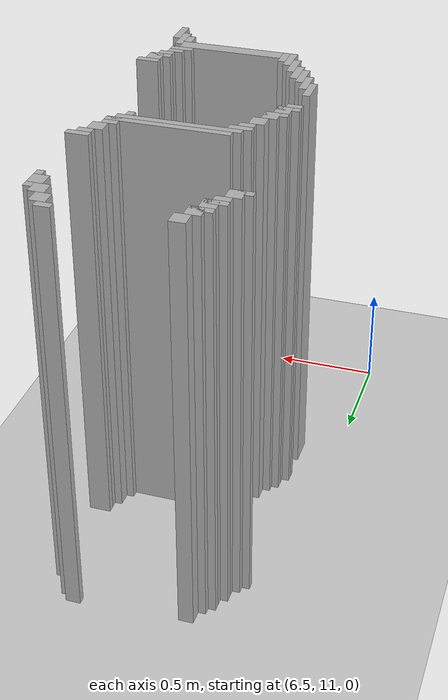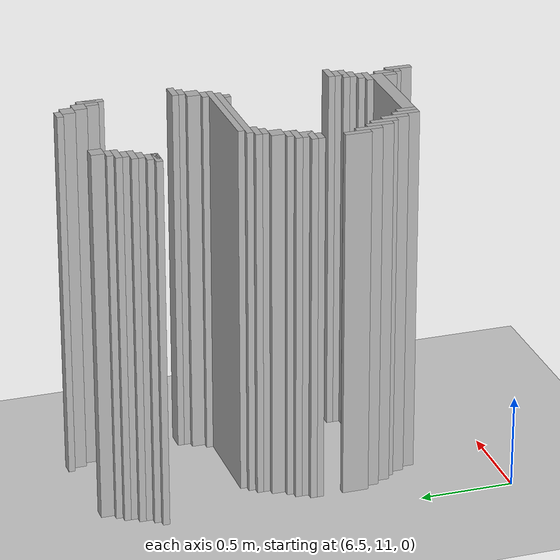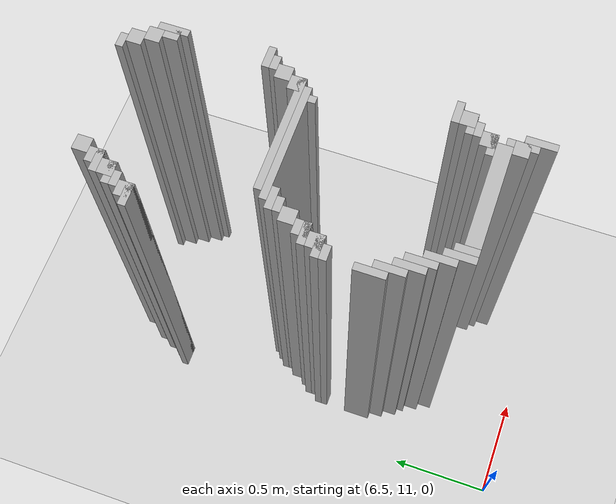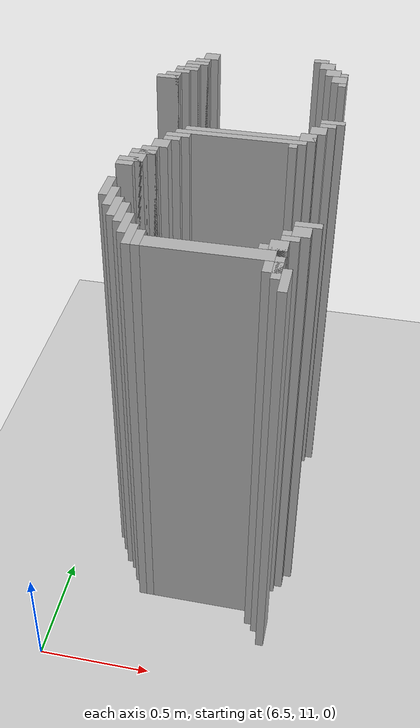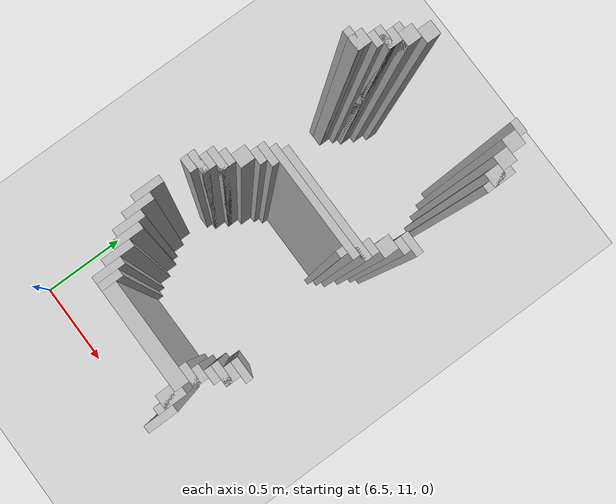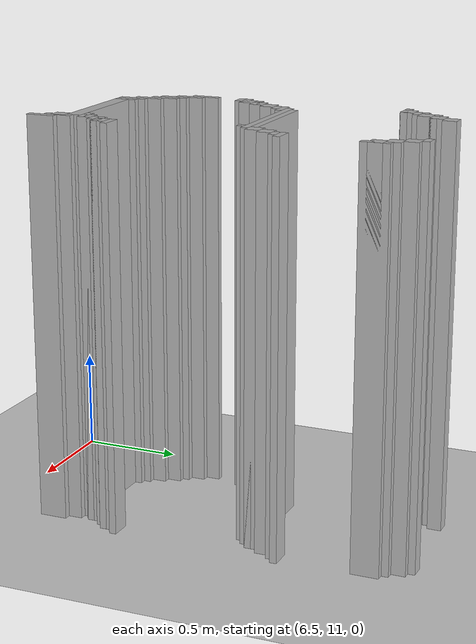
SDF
<sdf version="1.6">
 <world name="slam_world">
  <model name="ground_plane">
   <static>true</static>
   <link name="link">
    <collision name="collision">
     <geometry><plane><normal>0 0 1</normal><size>100 100</size></plane></geometry>
    </collision>
    <visual name="visual">
     <geometry><plane><normal>0 0 1</normal><size>100 100</size></plane></geometry>
     <material>
      <ambient>0.8 0.8 0.8 1</ambient>
      <diffuse>0.8 0.8 0.8 1</diffuse>
      <specular>0.8 0.8 0.8 1</specular>
     </material>
    </visual>
   </link>
  </model>
  <model name="wall_1422">
   <static>true</static>
   <pose>7.378190255220417 13.138051044083527 1.0 0 0 0</pose>
   <link name="link">
    <collision name="collision">
     <geometry><box><size>0.06960556844547564 0.03480278422273782 2.0</size></box></geometry>
    </collision>
    <visual name="visual">
     <geometry><box><size>0.06960556844547564 0.03480278422273782 2.0</size></box></geometry>
     <material><ambient>0.5 0.5 0.5 1</ambient><diffuse>0.7 0.7 0.7 1</diffuse></material>
    </visual>
   </link>
  </model>
  <model name="wall_1432">
   <static>true</static>
   <pose>6.85614849187935 13.085846867749419 1.0 0 0 0</pose>
   <link name="link">
    <collision name="collision">
     <geometry><box><size>0.06960556844547564 0.06960556844547564 2.0</size></box></geometry>
    </collision>
    <visual name="visual">
     <geometry><box><size>0.06960556844547564 0.06960556844547564 2.0</size></box></geometry>
     <material><ambient>0.5 0.5 0.5 1</ambient><diffuse>0.7 0.7 0.7 1</diffuse></material>
    </visual>
   </link>
  </model>
  <model name="wall_1433">
   <static>true</static>
   <pose>7.412993039443156 13.085846867749419 1.0 0 0 0</pose>
   <link name="link">
    <collision name="collision">
     <geometry><box><size>0.06960556844547564 0.06960556844547564 2.0</size></box></geometry>
    </collision>
    <visual name="visual">
     <geometry><box><size>0.06960556844547564 0.06960556844547564 2.0</size></box></geometry>
     <material><ambient>0.5 0.5 0.5 1</ambient><diffuse>0.7 0.7 0.7 1</diffuse></material>
    </visual>
   </link>
  </model>
  <model name="wall_1454">
   <static>true</static>
   <pose>6.821345707656612 13.016241299303944 1.0 0 0 0</pose>
   <link name="link">
    <collision name="collision">
     <geometry><box><size>0.06960556844547564 0.06960556844547564 2.0</size></box></geometry>
    </collision>
    <visual name="visual">
     <geometry><box><size>0.06960556844547564 0.06960556844547564 2.0</size></box></geometry>
     <material><ambient>0.5 0.5 0.5 1</ambient><diffuse>0.7 0.7 0.7 1</diffuse></material>
    </visual>
   </link>
  </model>
  <model name="wall_1455">
   <static>true</static>
   <pose>7.447795823665893 13.016241299303944 1.0 0 0 0</pose>
   <link name="link">
    <collision name="collision">
     <geometry><box><size>0.06960556844547564 0.06960556844547564 2.0</size></box></geometry>
    </collision>
    <visual name="visual">
     <geometry><box><size>0.06960556844547564 0.06960556844547564 2.0</size></box></geometry>
     <material><ambient>0.5 0.5 0.5 1</ambient><diffuse>0.7 0.7 0.7 1</diffuse></material>
    </visual>
   </link>
  </model>
  <model name="wall_1470">
   <static>true</static>
   <pose>6.803944315545244 12.998839907192576 1.0 0 0 0</pose>
   <link name="link">
    <collision name="collision">
     <geometry><box><size>0.10440835266821345 0.03480278422273782 2.0</size></box></geometry>
    </collision>
    <visual name="visual">
     <geometry><box><size>0.10440835266821345 0.03480278422273782 2.0</size></box></geometry>
     <material><ambient>0.5 0.5 0.5 1</ambient><diffuse>0.7 0.7 0.7 1</diffuse></material>
    </visual>
   </link>
  </model>
  <model name="wall_1471">
   <static>true</static>
   <pose>7.5 12.946635730858468 1.0 0 0 0</pose>
   <link name="link">
    <collision name="collision">
     <geometry><box><size>0.03480278422273782 0.13921113689095127 2.0</size></box></geometry>
    </collision>
    <visual name="visual">
     <geometry><box><size>0.03480278422273782 0.13921113689095127 2.0</size></box></geometry>
     <material><ambient>0.5 0.5 0.5 1</ambient><diffuse>0.7 0.7 0.7 1</diffuse></material>
    </visual>
   </link>
  </model>
  <model name="wall_1486">
   <static>true</static>
   <pose>6.786542923433874 12.946635730858468 1.0 0 0 0</pose>
   <link name="link">
    <collision name="collision">
     <geometry><box><size>0.06960556844547564 0.06960556844547564 2.0</size></box></geometry>
    </collision>
    <visual name="visual">
     <geometry><box><size>0.06960556844547564 0.06960556844547564 2.0</size></box></geometry>
     <material><ambient>0.5 0.5 0.5 1</ambient><diffuse>0.7 0.7 0.7 1</diffuse></material>
    </visual>
   </link>
  </model>
  <model name="wall_1487">
   <static>true</static>
   <pose>7.48259860788863 12.946635730858468 1.0 0 0 0</pose>
   <link name="link">
    <collision name="collision">
     <geometry><box><size>0.06960556844547564 0.06960556844547564 2.0</size></box></geometry>
    </collision>
    <visual name="visual">
     <geometry><box><size>0.06960556844547564 0.06960556844547564 2.0</size></box></geometry>
     <material><ambient>0.5 0.5 0.5 1</ambient><diffuse>0.7 0.7 0.7 1</diffuse></material>
    </visual>
   </link>
  </model>
  <model name="wall_1502">
   <static>true</static>
   <pose>6.769141531322505 12.929234338747099 1.0 0 0 0</pose>
   <link name="link">
    <collision name="collision">
     <geometry><box><size>0.10440835266821345 0.03480278422273782 2.0</size></box></geometry>
    </collision>
    <visual name="visual">
     <geometry><box><size>0.10440835266821345 0.03480278422273782 2.0</size></box></geometry>
     <material><ambient>0.5 0.5 0.5 1</ambient><diffuse>0.7 0.7 0.7 1</diffuse></material>
    </visual>
   </link>
  </model>
  <model name="wall_1515">
   <static>true</static>
   <pose>6.751740139211137 12.894431554524362 1.0 0 0 0</pose>
   <link name="link">
    <collision name="collision">
     <geometry><box><size>0.06960556844547564 0.03480278422273782 2.0</size></box></geometry>
    </collision>
    <visual name="visual">
     <geometry><box><size>0.06960556844547564 0.03480278422273782 2.0</size></box></geometry>
     <material><ambient>0.5 0.5 0.5 1</ambient><diffuse>0.7 0.7 0.7 1</diffuse></material>
    </visual>
   </link>
  </model>
  <model name="wall_1527">
   <static>true</static>
   <pose>6.716937354988398 12.842227378190255 1.0 0 0 0</pose>
   <link name="link">
    <collision name="collision">
     <geometry><box><size>0.06960556844547564 0.06960556844547564 2.0</size></box></geometry>
    </collision>
    <visual name="visual">
     <geometry><box><size>0.06960556844547564 0.06960556844547564 2.0</size></box></geometry>
     <material><ambient>0.5 0.5 0.5 1</ambient><diffuse>0.7 0.7 0.7 1</diffuse></material>
    </visual>
   </link>
  </model>
  <model name="wall_1543">
   <static>true</static>
   <pose>6.69953596287703 12.824825986078885 1.0 0 0 0</pose>
   <link name="link">
    <collision name="collision">
     <geometry><box><size>0.10440835266821345 0.03480278422273782 2.0</size></box></geometry>
    </collision>
    <visual name="visual">
     <geometry><box><size>0.10440835266821345 0.03480278422273782 2.0</size></box></geometry>
     <material><ambient>0.5 0.5 0.5 1</ambient><diffuse>0.7 0.7 0.7 1</diffuse></material>
    </visual>
   </link>
  </model>
  <model name="wall_1652">
   <static>true</static>
   <pose>7.5 12.511600928074245 1.0 0 0 0</pose>
   <link name="link">
    <collision name="collision">
     <geometry><box><size>0.10440835266821345 0.03480278422273782 2.0</size></box></geometry>
    </collision>
    <visual name="visual">
     <geometry><box><size>0.10440835266821345 0.03480278422273782 2.0</size></box></geometry>
     <material><ambient>0.5 0.5 0.5 1</ambient><diffuse>0.7 0.7 0.7 1</diffuse></material>
    </visual>
   </link>
  </model>
  <model name="wall_1663">
   <static>true</static>
   <pose>7.48259860788863 12.476798143851507 1.0 0 0 0</pose>
   <link name="link">
    <collision name="collision">
     <geometry><box><size>0.06960556844547564 0.03480278422273782 2.0</size></box></geometry>
    </collision>
    <visual name="visual">
     <geometry><box><size>0.06960556844547564 0.03480278422273782 2.0</size></box></geometry>
     <material><ambient>0.5 0.5 0.5 1</ambient><diffuse>0.7 0.7 0.7 1</diffuse></material>
    </visual>
   </link>
  </model>
  <model name="wall_1673">
   <static>true</static>
   <pose>7.447795823665893 12.424593967517401 1.0 0 0 0</pose>
   <link name="link">
    <collision name="collision">
     <geometry><box><size>0.06960556844547564 0.06960556844547564 2.0</size></box></geometry>
    </collision>
    <visual name="visual">
     <geometry><box><size>0.06960556844547564 0.06960556844547564 2.0</size></box></geometry>
     <material><ambient>0.5 0.5 0.5 1</ambient><diffuse>0.7 0.7 0.7 1</diffuse></material>
    </visual>
   </link>
  </model>
  <model name="wall_1686">
   <static>true</static>
   <pose>7.412993039443156 12.354988399071924 1.0 0 0 0</pose>
   <link name="link">
    <collision name="collision">
     <geometry><box><size>0.06960556844547564 0.06960556844547564 2.0</size></box></geometry>
    </collision>
    <visual name="visual">
     <geometry><box><size>0.06960556844547564 0.06960556844547564 2.0</size></box></geometry>
     <material><ambient>0.5 0.5 0.5 1</ambient><diffuse>0.7 0.7 0.7 1</diffuse></material>
    </visual>
   </link>
  </model>
  <model name="wall_1699">
   <static>true</static>
   <pose>7.16937354988399 12.337587006960556 1.0 0 0 0</pose>
   <link name="link">
    <collision name="collision">
     <geometry><box><size>0.5568445475638051 0.03480278422273782 2.0</size></box></geometry>
    </collision>
    <visual name="visual">
     <geometry><box><size>0.5568445475638051 0.03480278422273782 2.0</size></box></geometry>
     <material><ambient>0.5 0.5 0.5 1</ambient><diffuse>0.7 0.7 0.7 1</diffuse></material>
    </visual>
   </link>
  </model>
  <model name="wall_1711">
   <static>true</static>
   <pose>7.134570765661253 12.302784222737818 1.0 0 0 0</pose>
   <link name="link">
    <collision name="collision">
     <geometry><box><size>0.5568445475638051 0.03480278422273782 2.0</size></box></geometry>
    </collision>
    <visual name="visual">
     <geometry><box><size>0.5568445475638051 0.03480278422273782 2.0</size></box></geometry>
     <material><ambient>0.5 0.5 0.5 1</ambient><diffuse>0.7 0.7 0.7 1</diffuse></material>
    </visual>
   </link>
  </model>
  <model name="wall_1725">
   <static>true</static>
   <pose>6.8735498839907185 12.267981438515081 1.0 0 0 0</pose>
   <link name="link">
    <collision name="collision">
     <geometry><box><size>0.10440835266821345 0.03480278422273782 2.0</size></box></geometry>
    </collision>
    <visual name="visual">
     <geometry><box><size>0.10440835266821345 0.03480278422273782 2.0</size></box></geometry>
     <material><ambient>0.5 0.5 0.5 1</ambient><diffuse>0.7 0.7 0.7 1</diffuse></material>
    </visual>
   </link>
  </model>
  <model name="wall_1726">
   <static>true</static>
   <pose>7.360788863109049 12.267981438515081 1.0 0 0 0</pose>
   <link name="link">
    <collision name="collision">
     <geometry><box><size>0.03480278422273782 0.03480278422273782 2.0</size></box></geometry>
    </collision>
    <visual name="visual">
     <geometry><box><size>0.03480278422273782 0.03480278422273782 2.0</size></box></geometry>
     <material><ambient>0.5 0.5 0.5 1</ambient><diffuse>0.7 0.7 0.7 1</diffuse></material>
    </visual>
   </link>
  </model>
  <model name="wall_1744">
   <static>true</static>
   <pose>6.85614849187935 12.233178654292344 1.0 0 0 0</pose>
   <link name="link">
    <collision name="collision">
     <geometry><box><size>0.06960556844547564 0.03480278422273782 2.0</size></box></geometry>
    </collision>
    <visual name="visual">
     <geometry><box><size>0.06960556844547564 0.03480278422273782 2.0</size></box></geometry>
     <material><ambient>0.5 0.5 0.5 1</ambient><diffuse>0.7 0.7 0.7 1</diffuse></material>
    </visual>
   </link>
  </model>
  <model name="wall_1760">
   <static>true</static>
   <pose>6.821345707656612 12.180974477958236 1.0 0 0 0</pose>
   <link name="link">
    <collision name="collision">
     <geometry><box><size>0.06960556844547564 0.06960556844547564 2.0</size></box></geometry>
    </collision>
    <visual name="visual">
     <geometry><box><size>0.06960556844547564 0.06960556844547564 2.0</size></box></geometry>
     <material><ambient>0.5 0.5 0.5 1</ambient><diffuse>0.7 0.7 0.7 1</diffuse></material>
    </visual>
   </link>
  </model>
  <model name="wall_1776">
   <static>true</static>
   <pose>6.786542923433874 12.11136890951276 1.0 0 0 0</pose>
   <link name="link">
    <collision name="collision">
     <geometry><box><size>0.06960556844547564 0.06960556844547564 2.0</size></box></geometry>
    </collision>
    <visual name="visual">
     <geometry><box><size>0.06960556844547564 0.06960556844547564 2.0</size></box></geometry>
     <material><ambient>0.5 0.5 0.5 1</ambient><diffuse>0.7 0.7 0.7 1</diffuse></material>
    </visual>
   </link>
  </model>
  <model name="wall_1792">
   <static>true</static>
   <pose>6.769141531322505 12.093967517401392 1.0 0 0 0</pose>
   <link name="link">
    <collision name="collision">
     <geometry><box><size>0.10440835266821345 0.03480278422273782 2.0</size></box></geometry>
    </collision>
    <visual name="visual">
     <geometry><box><size>0.10440835266821345 0.03480278422273782 2.0</size></box></geometry>
     <material><ambient>0.5 0.5 0.5 1</ambient><diffuse>0.7 0.7 0.7 1</diffuse></material>
    </visual>
   </link>
  </model>
  <model name="wall_1804">
   <static>true</static>
   <pose>6.751740139211137 12.041763341067284 1.0 0 0 0</pose>
   <link name="link">
    <collision name="collision">
     <geometry><box><size>0.06960556844547564 0.06960556844547564 2.0</size></box></geometry>
    </collision>
    <visual name="visual">
     <geometry><box><size>0.06960556844547564 0.06960556844547564 2.0</size></box></geometry>
     <material><ambient>0.5 0.5 0.5 1</ambient><diffuse>0.7 0.7 0.7 1</diffuse></material>
    </visual>
   </link>
  </model>
  <model name="wall_1818">
   <static>true</static>
   <pose>6.734338747099768 12.024361948955915 1.0 0 0 0</pose>
   <link name="link">
    <collision name="collision">
     <geometry><box><size>0.10440835266821345 0.03480278422273782 2.0</size></box></geometry>
    </collision>
    <visual name="visual">
     <geometry><box><size>0.10440835266821345 0.03480278422273782 2.0</size></box></geometry>
     <material><ambient>0.5 0.5 0.5 1</ambient><diffuse>0.7 0.7 0.7 1</diffuse></material>
    </visual>
   </link>
  </model>
  <model name="wall_1829">
   <static>true</static>
   <pose>6.716937354988398 11.989559164733178 1.0 0 0 0</pose>
   <link name="link">
    <collision name="collision">
     <geometry><box><size>0.06960556844547564 0.03480278422273782 2.0</size></box></geometry>
    </collision>
    <visual name="visual">
     <geometry><box><size>0.06960556844547564 0.03480278422273782 2.0</size></box></geometry>
     <material><ambient>0.5 0.5 0.5 1</ambient><diffuse>0.7 0.7 0.7 1</diffuse></material>
    </visual>
   </link>
  </model>
  <model name="wall_1884">
   <static>true</static>
   <pose>6.69953596287703 11.79814385150812 1.0 0 0 0</pose>
   <link name="link">
    <collision name="collision">
     <geometry><box><size>0.03480278422273782 0.13921113689095127 2.0</size></box></geometry>
    </collision>
    <visual name="visual">
     <geometry><box><size>0.03480278422273782 0.13921113689095127 2.0</size></box></geometry>
     <material><ambient>0.5 0.5 0.5 1</ambient><diffuse>0.7 0.7 0.7 1</diffuse></material>
    </visual>
   </link>
  </model>
  <model name="wall_1916">
   <static>true</static>
   <pose>6.734338747099768 11.728538283062644 1.0 0 0 0</pose>
   <link name="link">
    <collision name="collision">
     <geometry><box><size>0.03480278422273782 0.13921113689095127 2.0</size></box></geometry>
    </collision>
    <visual name="visual">
     <geometry><box><size>0.03480278422273782 0.13921113689095127 2.0</size></box></geometry>
     <material><ambient>0.5 0.5 0.5 1</ambient><diffuse>0.7 0.7 0.7 1</diffuse></material>
    </visual>
   </link>
  </model>
  <model name="wall_1932">
   <static>true</static>
   <pose>6.769141531322505 11.658932714617169 1.0 0 0 0</pose>
   <link name="link">
    <collision name="collision">
     <geometry><box><size>0.03480278422273782 0.13921113689095127 2.0</size></box></geometry>
    </collision>
    <visual name="visual">
     <geometry><box><size>0.03480278422273782 0.13921113689095127 2.0</size></box></geometry>
     <material><ambient>0.5 0.5 0.5 1</ambient><diffuse>0.7 0.7 0.7 1</diffuse></material>
    </visual>
   </link>
  </model>
  <model name="wall_1948">
   <static>true</static>
   <pose>6.803944315545244 11.624129930394432 1.0 0 0 0</pose>
   <link name="link">
    <collision name="collision">
     <geometry><box><size>0.03480278422273782 0.13921113689095127 2.0</size></box></geometry>
    </collision>
    <visual name="visual">
     <geometry><box><size>0.03480278422273782 0.13921113689095127 2.0</size></box></geometry>
     <material><ambient>0.5 0.5 0.5 1</ambient><diffuse>0.7 0.7 0.7 1</diffuse></material>
    </visual>
   </link>
  </model>
  <model name="wall_1949">
   <static>true</static>
   <pose>7.5 11.676334106728538 1.0 0 0 0</pose>
   <link name="link">
    <collision name="collision">
     <geometry><box><size>0.10440835266821345 0.03480278422273782 2.0</size></box></geometry>
    </collision>
    <visual name="visual">
     <geometry><box><size>0.10440835266821345 0.03480278422273782 2.0</size></box></geometry>
     <material><ambient>0.5 0.5 0.5 1</ambient><diffuse>0.7 0.7 0.7 1</diffuse></material>
    </visual>
   </link>
  </model>
  <model name="wall_1961">
   <static>true</static>
   <pose>7.48259860788863 11.624129930394432 1.0 0 0 0</pose>
   <link name="link">
    <collision name="collision">
     <geometry><box><size>0.06960556844547564 0.06960556844547564 2.0</size></box></geometry>
    </collision>
    <visual name="visual">
     <geometry><box><size>0.06960556844547564 0.06960556844547564 2.0</size></box></geometry>
     <material><ambient>0.5 0.5 0.5 1</ambient><diffuse>0.7 0.7 0.7 1</diffuse></material>
    </visual>
   </link>
  </model>
  <model name="wall_1973">
   <static>true</static>
   <pose>6.838747099767981 11.554524361948955 1.0 0 0 0</pose>
   <link name="link">
    <collision name="collision">
     <geometry><box><size>0.03480278422273782 0.13921113689095127 2.0</size></box></geometry>
    </collision>
    <visual name="visual">
     <geometry><box><size>0.03480278422273782 0.13921113689095127 2.0</size></box></geometry>
     <material><ambient>0.5 0.5 0.5 1</ambient><diffuse>0.7 0.7 0.7 1</diffuse></material>
    </visual>
   </link>
  </model>
  <model name="wall_1974">
   <static>true</static>
   <pose>7.465197215777262 11.606728538283063 1.0 0 0 0</pose>
   <link name="link">
    <collision name="collision">
     <geometry><box><size>0.10440835266821345 0.03480278422273782 2.0</size></box></geometry>
    </collision>
    <visual name="visual">
     <geometry><box><size>0.10440835266821345 0.03480278422273782 2.0</size></box></geometry>
     <material><ambient>0.5 0.5 0.5 1</ambient><diffuse>0.7 0.7 0.7 1</diffuse></material>
    </visual>
   </link>
  </model>
  <model name="wall_1986">
   <static>true</static>
   <pose>7.447795823665893 11.571925754060324 1.0 0 0 0</pose>
   <link name="link">
    <collision name="collision">
     <geometry><box><size>0.06960556844547564 0.03480278422273782 2.0</size></box></geometry>
    </collision>
    <visual name="visual">
     <geometry><box><size>0.06960556844547564 0.03480278422273782 2.0</size></box></geometry>
     <material><ambient>0.5 0.5 0.5 1</ambient><diffuse>0.7 0.7 0.7 1</diffuse></material>
    </visual>
   </link>
  </model>
  <model name="wall_1998">
   <static>true</static>
   <pose>6.8735498839907185 11.48491879350348 1.0 0 0 0</pose>
   <link name="link">
    <collision name="collision">
     <geometry><box><size>0.03480278422273782 0.13921113689095127 2.0</size></box></geometry>
    </collision>
    <visual name="visual">
     <geometry><box><size>0.03480278422273782 0.13921113689095127 2.0</size></box></geometry>
     <material><ambient>0.5 0.5 0.5 1</ambient><diffuse>0.7 0.7 0.7 1</diffuse></material>
    </visual>
   </link>
  </model>
  <model name="wall_1999">
   <static>true</static>
   <pose>7.412993039443156 11.519721577726218 1.0 0 0 0</pose>
   <link name="link">
    <collision name="collision">
     <geometry><box><size>0.06960556844547564 0.06960556844547564 2.0</size></box></geometry>
    </collision>
    <visual name="visual">
     <geometry><box><size>0.06960556844547564 0.06960556844547564 2.0</size></box></geometry>
     <material><ambient>0.5 0.5 0.5 1</ambient><diffuse>0.7 0.7 0.7 1</diffuse></material>
    </visual>
   </link>
  </model>
  <model name="wall_2013">
   <static>true</static>
   <pose>6.908352668213457 11.467517401392112 1.0 0 0 0</pose>
   <link name="link">
    <collision name="collision">
     <geometry><box><size>0.03480278422273782 0.10440835266821345 2.0</size></box></geometry>
    </collision>
    <visual name="visual">
     <geometry><box><size>0.03480278422273782 0.10440835266821345 2.0</size></box></geometry>
     <material><ambient>0.5 0.5 0.5 1</ambient><diffuse>0.7 0.7 0.7 1</diffuse></material>
    </visual>
   </link>
  </model>
  <model name="wall_2014">
   <static>true</static>
   <pose>7.395591647331786 11.502320185614849 1.0 0 0 0</pose>
   <link name="link">
    <collision name="collision">
     <geometry><box><size>0.10440835266821345 0.03480278422273782 2.0</size></box></geometry>
    </collision>
    <visual name="visual">
     <geometry><box><size>0.10440835266821345 0.03480278422273782 2.0</size></box></geometry>
     <material><ambient>0.5 0.5 0.5 1</ambient><diffuse>0.7 0.7 0.7 1</diffuse></material>
    </visual>
   </link>
  </model>
  <model name="wall_2027">
   <static>true</static>
   <pose>7.16937354988399 11.450116009280743 1.0 0 0 0</pose>
   <link name="link">
    <collision name="collision">
     <geometry><box><size>0.4872389791183295 0.06960556844547564 2.0</size></box></geometry>
    </collision>
    <visual name="visual">
     <geometry><box><size>0.4872389791183295 0.06960556844547564 2.0</size></box></geometry>
     <material><ambient>0.5 0.5 0.5 1</ambient><diffuse>0.7 0.7 0.7 1</diffuse></material>
    </visual>
   </link>
  </model>
  <model name="wall_2040">
   <static>true</static>
   <pose>7.430394431554524 11.380510440835266 1.0 0 0 0</pose>
   <link name="link">
    <collision name="collision">
     <geometry><box><size>0.03480278422273782 0.13921113689095127 2.0</size></box></geometry>
    </collision>
    <visual name="visual">
     <geometry><box><size>0.03480278422273782 0.13921113689095127 2.0</size></box></geometry>
     <material><ambient>0.5 0.5 0.5 1</ambient><diffuse>0.7 0.7 0.7 1</diffuse></material>
    </visual>
   </link>
  </model>
  <model name="wall_2057">
   <static>true</static>
   <pose>7.412993039443156 11.380510440835266 1.0 0 0 0</pose>
   <link name="link">
    <collision name="collision">
     <geometry><box><size>0.06960556844547564 0.06960556844547564 2.0</size></box></geometry>
    </collision>
    <visual name="visual">
     <geometry><box><size>0.06960556844547564 0.06960556844547564 2.0</size></box></geometry>
     <material><ambient>0.5 0.5 0.5 1</ambient><diffuse>0.7 0.7 0.7 1</diffuse></material>
    </visual>
   </link>
  </model>
  <model name="wall_2074">
   <static>true</static>
   <pose>7.465197215777262 11.310904872389791 1.0 0 0 0</pose>
   <link name="link">
    <collision name="collision">
     <geometry><box><size>0.03480278422273782 0.13921113689095127 2.0</size></box></geometry>
    </collision>
    <visual name="visual">
     <geometry><box><size>0.03480278422273782 0.13921113689095127 2.0</size></box></geometry>
     <material><ambient>0.5 0.5 0.5 1</ambient><diffuse>0.7 0.7 0.7 1</diffuse></material>
    </visual>
   </link>
  </model>
 </world>
</sdf>
